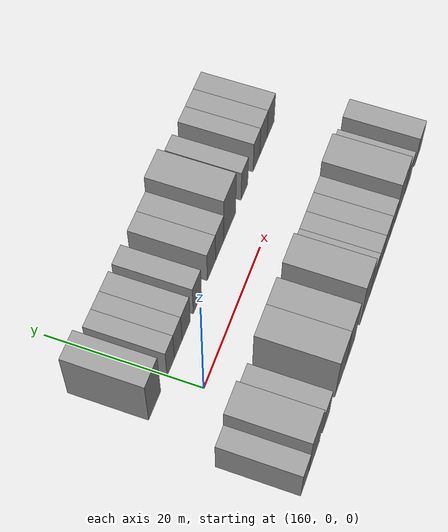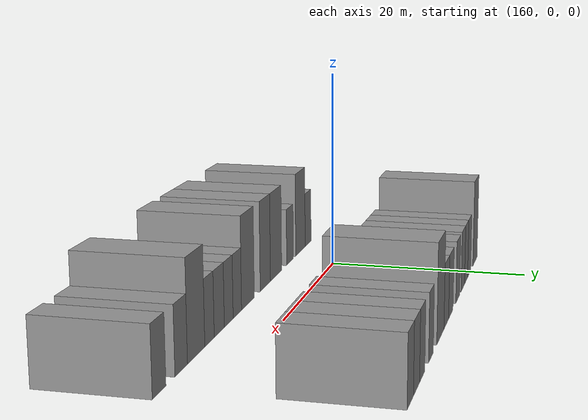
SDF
<sdf version="1.6">
 <world name="default">
  <model name="building_37">
   <static>1</static>
   <pose>156.0537 9.5000 0 0.000000 0.000000 1.570796</pose>
   <link name="link">
    <pose>0 0 4.50 0 0 0</pose>
    <collision name="collision"><geometry><box><size>10.0000 3.7815 9.0000</size></box></geometry></collision>
    <visual name="visual">
     <cast_shadows>0</cast_shadows>
     <geometry><box><size>10.0000 3.7815 9.0000</size></box></geometry>
     <material>
      <script>
       <uri>model://grey_wall/materials/scripts</uri>
       <uri>model://grey_wall/materials/textures</uri>
       <name>vrc/grey_wall</name>
      </script>
     </material>
    </visual>
   </link>
  </model>
  <model name="building_38">
   <static>1</static>
   <pose>161.1519 9.5000 0 0.000000 0.000000 1.570796</pose>
   <link name="link">
    <pose>0 0 3.00 0 0 0</pose>
    <collision name="collision"><geometry><box><size>10.0000 2.4148 6.0000</size></box></geometry></collision>
    <visual name="visual">
     <cast_shadows>0</cast_shadows>
     <geometry><box><size>10.0000 2.4148 6.0000</size></box></geometry>
     <material>
      <script>
       <uri>model://grey_wall/materials/scripts</uri>
       <uri>model://grey_wall/materials/textures</uri>
       <name>vrc/grey_wall</name>
      </script>
     </material>
    </visual>
   </link>
  </model>
  <model name="building_39">
   <static>1</static>
   <pose>163.5922 9.5000 0 0.000000 0.000000 1.570796</pose>
   <link name="link">
    <pose>0 0 3.00 0 0 0</pose>
    <collision name="collision"><geometry><box><size>10.0000 2.4658 6.0000</size></box></geometry></collision>
    <visual name="visual">
     <cast_shadows>0</cast_shadows>
     <geometry><box><size>10.0000 2.4658 6.0000</size></box></geometry>
     <material>
      <script>
       <uri>model://grey_wall/materials/scripts</uri>
       <uri>model://grey_wall/materials/textures</uri>
       <name>vrc/grey_wall</name>
      </script>
     </material>
    </visual>
   </link>
  </model>
  <model name="building_40">
   <static>1</static>
   <pose>166.2034 9.5000 0 0.000000 0.000000 1.570796</pose>
   <link name="link">
    <pose>0 0 3.00 0 0 0</pose>
    <collision name="collision"><geometry><box><size>10.0000 2.7566 6.0000</size></box></geometry></collision>
    <visual name="visual">
     <cast_shadows>0</cast_shadows>
     <geometry><box><size>10.0000 2.7566 6.0000</size></box></geometry>
     <material>
      <script>
       <uri>model://grey_wall/materials/scripts</uri>
       <uri>model://grey_wall/materials/textures</uri>
       <name>vrc/grey_wall</name>
      </script>
     </material>
    </visual>
   </link>
  </model>
  <model name="building_41">
   <static>1</static>
   <pose>169.9763 9.5000 0 0.000000 0.000000 1.570796</pose>
   <link name="link">
    <pose>0 0 3.00 0 0 0</pose>
    <collision name="collision"><geometry><box><size>10.0000 2.7892 6.0000</size></box></geometry></collision>
    <visual name="visual">
     <cast_shadows>0</cast_shadows>
     <geometry><box><size>10.0000 2.7892 6.0000</size></box></geometry>
     <material>
      <script>
       <uri>model://grey_wall/materials/scripts</uri>
       <uri>model://grey_wall/materials/textures</uri>
       <name>vrc/grey_wall</name>
      </script>
     </material>
    </visual>
   </link>
  </model>
  <model name="building_42">
   <static>1</static>
   <pose>174.8296 9.5000 0 0.000000 0.000000 1.570796</pose>
   <link name="link">
    <pose>0 0 3.00 0 0 0</pose>
    <collision name="collision"><geometry><box><size>10.0000 2.9173 6.0000</size></box></geometry></collision>
    <visual name="visual">
     <cast_shadows>0</cast_shadows>
     <geometry><box><size>10.0000 2.9173 6.0000</size></box></geometry>
     <material>
      <script>
       <uri>model://grey_wall/materials/scripts</uri>
       <uri>model://grey_wall/materials/textures</uri>
       <name>vrc/grey_wall</name>
      </script>
     </material>
    </visual>
   </link>
  </model>
  <model name="building_43">
   <static>1</static>
   <pose>177.7691 9.5000 0 0.000000 0.000000 1.570796</pose>
   <link name="link">
    <pose>0 0 3.00 0 0 0</pose>
    <collision name="collision"><geometry><box><size>10.0000 2.9616 6.0000</size></box></geometry></collision>
    <visual name="visual">
     <cast_shadows>0</cast_shadows>
     <geometry><box><size>10.0000 2.9616 6.0000</size></box></geometry>
     <material>
      <script>
       <uri>model://grey_wall/materials/scripts</uri>
       <uri>model://grey_wall/materials/textures</uri>
       <name>vrc/grey_wall</name>
      </script>
     </material>
    </visual>
   </link>
  </model>
  <model name="building_44">
   <static>1</static>
   <pose>181.4074 9.5000 0 0.000000 0.000000 1.570796</pose>
   <link name="link">
    <pose>0 0 4.50 0 0 0</pose>
    <collision name="collision"><geometry><box><size>10.0000 4.3151 9.0000</size></box></geometry></collision>
    <visual name="visual">
     <cast_shadows>0</cast_shadows>
     <geometry><box><size>10.0000 4.3151 9.0000</size></box></geometry>
     <material>
      <script>
       <uri>model://grey_wall/materials/scripts</uri>
       <uri>model://grey_wall/materials/textures</uri>
       <name>vrc/grey_wall</name>
      </script>
     </material>
    </visual>
   </link>
  </model>
  <model name="building_45">
   <static>1</static>
   <pose>186.8320 9.5000 0 0.000000 0.000000 1.570796</pose>
   <link name="link">
    <pose>0 0 3.00 0 0 0</pose>
    <collision name="collision"><geometry><box><size>10.0000 2.5339 6.0000</size></box></geometry></collision>
    <visual name="visual">
     <cast_shadows>0</cast_shadows>
     <geometry><box><size>10.0000 2.5339 6.0000</size></box></geometry>
     <material>
      <script>
       <uri>model://grey_wall/materials/scripts</uri>
       <uri>model://grey_wall/materials/textures</uri>
       <name>vrc/grey_wall</name>
      </script>
     </material>
    </visual>
   </link>
  </model>
  <model name="building_46">
   <static>1</static>
   <pose>191.3920 9.5000 0 0.000000 0.000000 1.570796</pose>
   <link name="link">
    <pose>0 0 3.00 0 0 0</pose>
    <collision name="collision"><geometry><box><size>10.0000 2.5862 6.0000</size></box></geometry></collision>
    <visual name="visual">
     <cast_shadows>0</cast_shadows>
     <geometry><box><size>10.0000 2.5862 6.0000</size></box></geometry>
     <material>
      <script>
       <uri>model://grey_wall/materials/scripts</uri>
       <uri>model://grey_wall/materials/textures</uri>
       <name>vrc/grey_wall</name>
      </script>
     </material>
    </visual>
   </link>
  </model>
  <model name="building_47">
   <static>1</static>
   <pose>194.1227 9.5000 0 0.000000 0.000000 1.570796</pose>
   <link name="link">
    <pose>0 0 3.00 0 0 0</pose>
    <collision name="collision"><geometry><box><size>10.0000 2.8751 6.0000</size></box></geometry></collision>
    <visual name="visual">
     <cast_shadows>0</cast_shadows>
     <geometry><box><size>10.0000 2.8751 6.0000</size></box></geometry>
     <material>
      <script>
       <uri>model://grey_wall/materials/scripts</uri>
       <uri>model://grey_wall/materials/textures</uri>
       <name>vrc/grey_wall</name>
      </script>
     </material>
    </visual>
   </link>
  </model>
  <model name="building_48">
   <static>1</static>
   <pose>196.9882 9.5000 0 0.000000 0.000000 1.570796</pose>
   <link name="link">
    <pose>0 0 3.00 0 0 0</pose>
    <collision name="collision"><geometry><box><size>10.0000 2.8558 6.0000</size></box></geometry></collision>
    <visual name="visual">
     <cast_shadows>0</cast_shadows>
     <geometry><box><size>10.0000 2.8558 6.0000</size></box></geometry>
     <material>
      <script>
       <uri>model://grey_wall/materials/scripts</uri>
       <uri>model://grey_wall/materials/textures</uri>
       <name>vrc/grey_wall</name>
      </script>
     </material>
    </visual>
   </link>
  </model>
  <model name="building_86">
   <static>1</static>
   <pose>152.8754 -9.5000 0 0.000000 0.000000 1.570796</pose>
   <link name="link">
    <pose>0 0 3.00 0 0 0</pose>
    <collision name="collision"><geometry><box><size>10.0000 2.7011 6.0000</size></box></geometry></collision>
    <visual name="visual">
     <cast_shadows>0</cast_shadows>
     <geometry><box><size>10.0000 2.7011 6.0000</size></box></geometry>
     <material>
      <script>
       <uri>model://grey_wall/materials/scripts</uri>
       <uri>model://grey_wall/materials/textures</uri>
       <name>vrc/grey_wall</name>
      </script>
     </material>
    </visual>
   </link>
  </model>
  <model name="building_87">
   <static>1</static>
   <pose>156.2790 -9.5000 0 0.000000 0.000000 1.570796</pose>
   <link name="link">
    <pose>0 0 4.50 0 0 0</pose>
    <collision name="collision"><geometry><box><size>10.0000 4.1061 9.0000</size></box></geometry></collision>
    <visual name="visual">
     <cast_shadows>0</cast_shadows>
     <geometry><box><size>10.0000 4.1061 9.0000</size></box></geometry>
     <material>
      <script>
       <uri>model://grey_wall/materials/scripts</uri>
       <uri>model://grey_wall/materials/textures</uri>
       <name>vrc/grey_wall</name>
      </script>
     </material>
    </visual>
   </link>
  </model>
  <model name="building_88">
   <static>1</static>
   <pose>160.6821 -9.5000 0 0.000000 0.000000 1.570796</pose>
   <link name="link">
    <pose>0 0 3.00 0 0 0</pose>
    <collision name="collision"><geometry><box><size>10.0000 2.7001 6.0000</size></box></geometry></collision>
    <visual name="visual">
     <cast_shadows>0</cast_shadows>
     <geometry><box><size>10.0000 2.7001 6.0000</size></box></geometry>
     <material>
      <script>
       <uri>model://grey_wall/materials/scripts</uri>
       <uri>model://grey_wall/materials/textures</uri>
       <name>vrc/grey_wall</name>
      </script>
     </material>
    </visual>
   </link>
  </model>
  <model name="building_89">
   <static>1</static>
   <pose>166.1311 -9.5000 0 0.000000 0.000000 1.570796</pose>
   <link name="link">
    <pose>0 0 4.50 0 0 0</pose>
    <collision name="collision"><geometry><box><size>10.0000 4.1979 9.0000</size></box></geometry></collision>
    <visual name="visual">
     <cast_shadows>0</cast_shadows>
     <geometry><box><size>10.0000 4.1979 9.0000</size></box></geometry>
     <material>
      <script>
       <uri>model://grey_wall/materials/scripts</uri>
       <uri>model://grey_wall/materials/textures</uri>
       <name>vrc/grey_wall</name>
      </script>
     </material>
    </visual>
   </link>
  </model>
  <model name="building_90">
   <static>1</static>
   <pose>170.0549 -9.5000 0 0.000000 0.000000 1.570796</pose>
   <link name="link">
    <pose>0 0 4.50 0 0 0</pose>
    <collision name="collision"><geometry><box><size>10.0000 3.6498 9.0000</size></box></geometry></collision>
    <visual name="visual">
     <cast_shadows>0</cast_shadows>
     <geometry><box><size>10.0000 3.6498 9.0000</size></box></geometry>
     <material>
      <script>
       <uri>model://grey_wall/materials/scripts</uri>
       <uri>model://grey_wall/materials/textures</uri>
       <name>vrc/grey_wall</name>
      </script>
     </material>
    </visual>
   </link>
  </model>
  <model name="building_91">
   <static>1</static>
   <pose>175.9458 -9.5000 0 0.000000 0.000000 1.570796</pose>
   <link name="link">
    <pose>0 0 4.50 0 0 0</pose>
    <collision name="collision"><geometry><box><size>10.0000 4.1320 9.0000</size></box></geometry></collision>
    <visual name="visual">
     <cast_shadows>0</cast_shadows>
     <geometry><box><size>10.0000 4.1320 9.0000</size></box></geometry>
     <material>
      <script>
       <uri>model://grey_wall/materials/scripts</uri>
       <uri>model://grey_wall/materials/textures</uri>
       <name>vrc/grey_wall</name>
      </script>
     </material>
    </visual>
   </link>
  </model>
  <model name="building_92">
   <static>1</static>
   <pose>179.2980 -9.5000 0 0.000000 0.000000 1.570796</pose>
   <link name="link">
    <pose>0 0 3.00 0 0 0</pose>
    <collision name="collision"><geometry><box><size>10.0000 2.5722 6.0000</size></box></geometry></collision>
    <visual name="visual">
     <cast_shadows>0</cast_shadows>
     <geometry><box><size>10.0000 2.5722 6.0000</size></box></geometry>
     <material>
      <script>
       <uri>model://grey_wall/materials/scripts</uri>
       <uri>model://grey_wall/materials/textures</uri>
       <name>vrc/grey_wall</name>
      </script>
     </material>
    </visual>
   </link>
  </model>
  <model name="building_93">
   <static>1</static>
   <pose>181.8725 -9.5000 0 0.000000 0.000000 1.570796</pose>
   <link name="link">
    <pose>0 0 3.00 0 0 0</pose>
    <collision name="collision"><geometry><box><size>10.0000 2.5769 6.0000</size></box></geometry></collision>
    <visual name="visual">
     <cast_shadows>0</cast_shadows>
     <geometry><box><size>10.0000 2.5769 6.0000</size></box></geometry>
     <material>
      <script>
       <uri>model://grey_wall/materials/scripts</uri>
       <uri>model://grey_wall/materials/textures</uri>
       <name>vrc/grey_wall</name>
      </script>
     </material>
    </visual>
   </link>
  </model>
  <model name="building_94">
   <static>1</static>
   <pose>184.5781 -9.5000 0 0.000000 0.000000 1.570796</pose>
   <link name="link">
    <pose>0 0 3.00 0 0 0</pose>
    <collision name="collision"><geometry><box><size>10.0000 2.8343 6.0000</size></box></geometry></collision>
    <visual name="visual">
     <cast_shadows>0</cast_shadows>
     <geometry><box><size>10.0000 2.8343 6.0000</size></box></geometry>
     <material>
      <script>
       <uri>model://grey_wall/materials/scripts</uri>
       <uri>model://grey_wall/materials/textures</uri>
       <name>vrc/grey_wall</name>
      </script>
     </material>
    </visual>
   </link>
  </model>
  <model name="building_95">
   <static>1</static>
   <pose>187.2545 -9.5000 0 0.000000 0.000000 1.570796</pose>
   <link name="link">
    <pose>0 0 3.00 0 0 0</pose>
    <collision name="collision"><geometry><box><size>10.0000 2.5185 6.0000</size></box></geometry></collision>
    <visual name="visual">
     <cast_shadows>0</cast_shadows>
     <geometry><box><size>10.0000 2.5185 6.0000</size></box></geometry>
     <material>
      <script>
       <uri>model://grey_wall/materials/scripts</uri>
       <uri>model://grey_wall/materials/textures</uri>
       <name>vrc/grey_wall</name>
      </script>
     </material>
    </visual>
   </link>
  </model>
  <model name="building_96">
   <static>1</static>
   <pose>190.6866 -9.5000 0 0.000000 0.000000 1.570796</pose>
   <link name="link">
    <pose>0 0 4.50 0 0 0</pose>
    <collision name="collision"><geometry><box><size>10.0000 4.3458 9.0000</size></box></geometry></collision>
    <visual name="visual">
     <cast_shadows>0</cast_shadows>
     <geometry><box><size>10.0000 4.3458 9.0000</size></box></geometry>
     <material>
      <script>
       <uri>model://grey_wall/materials/scripts</uri>
       <uri>model://grey_wall/materials/textures</uri>
       <name>vrc/grey_wall</name>
      </script>
     </material>
    </visual>
   </link>
  </model>
  <model name="building_97">
   <static>1</static>
   <pose>194.3310 -9.5000 0 0.000000 0.000000 1.570796</pose>
   <link name="link">
    <pose>0 0 3.00 0 0 0</pose>
    <collision name="collision"><geometry><box><size>10.0000 2.9430 6.0000</size></box></geometry></collision>
    <visual name="visual">
     <cast_shadows>0</cast_shadows>
     <geometry><box><size>10.0000 2.9430 6.0000</size></box></geometry>
     <material>
      <script>
       <uri>model://grey_wall/materials/scripts</uri>
       <uri>model://grey_wall/materials/textures</uri>
       <name>vrc/grey_wall</name>
      </script>
     </material>
    </visual>
   </link>
  </model>
  <model name="building_98">
   <static>1</static>
   <pose>199.2703 -9.5000 0 0.000000 0.000000 1.570796</pose>
   <link name="link">
    <pose>0 0 3.00 0 0 0</pose>
    <collision name="collision"><geometry><box><size>10.0000 2.9355 6.0000</size></box></geometry></collision>
    <visual name="visual">
     <cast_shadows>0</cast_shadows>
     <geometry><box><size>10.0000 2.9355 6.0000</size></box></geometry>
     <material>
      <script>
       <uri>model://grey_wall/materials/scripts</uri>
       <uri>model://grey_wall/materials/textures</uri>
       <name>vrc/grey_wall</name>
      </script>
     </material>
    </visual>
   </link>
  </model>
 </world>
</sdf>
